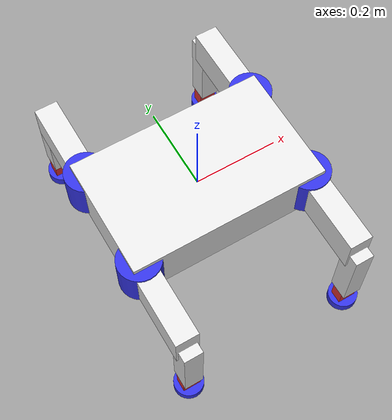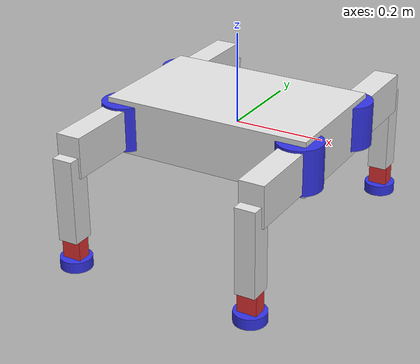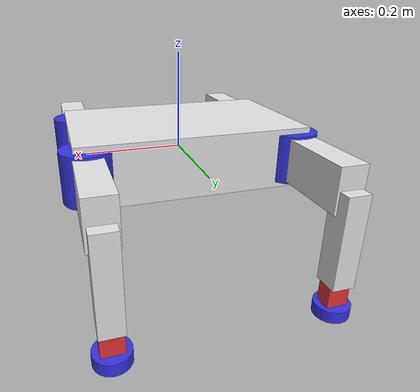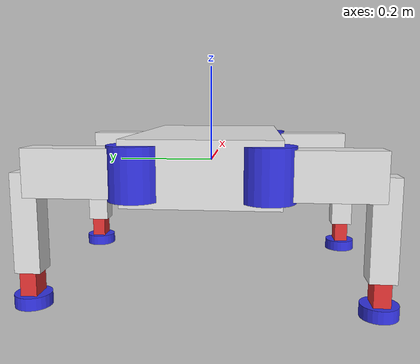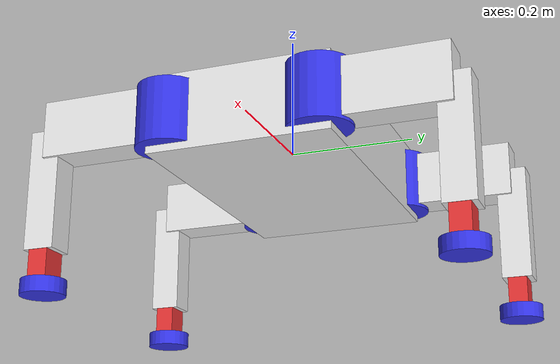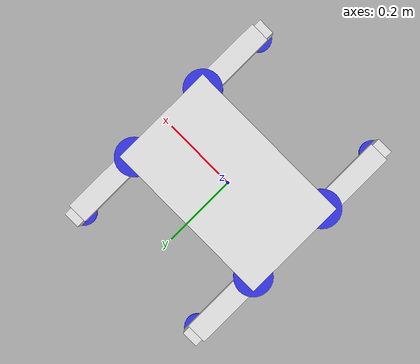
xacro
<robot name="rollerwalker" xmlns:xacro="http://ros.org/wiki/xacro">
    <xacro:include filename="$(find rollerwalker_sim)/xacro/include/leg_macro.xacro" />

    <!-- 本体の描画 -->
    <link name="base_link">
        <origin xyz="0 0 ${body_z}" rpy="0 0 0"/>
    </link>

    <joint name="base_to_body" type="fixed">
        <parent link="base_link"/>
        <child  link="body"/>
        <origin xyz="0 0 0" rpy="0 0 0"/>
    </joint>

    <!-- ボディ -->
    <link name = "body">
        <inertial>
            <origin xyz="0 0 0.0" rpy="0 0 0"/>
            <mass value ="${body_mass}"/>
            <inertia ixx="${I_body_xx}" ixy="0.0" ixz="0.0" iyy="${I_body_yy}" iyz="0.0" izz="${I_body_zz}"/>
        </inertial>
        <visual>
            <geometry>
                <box size = "${body_length} ${body_width} ${body_thickness}" />
            </geometry>
            <origin xyz="0 0 0.0" rpy="0 0 0"/>
            <material name = "white"/>
        </visual>

        <collision>
            <geometry>
                <box size = "${body_length} ${body_width} ${body_thickness}" />
            </geometry>
            <origin xyz="0 0 0" rpy="0 0 0"/>
        </collision>
    </link>
    <gazebo reference="body">
        <material>Gazebo/White</material>
    </gazebo>

    <!-- 脚のマクロの呼び出し -->
    <xacro:leg_macro leg_posi="lf"/>
    <xacro:leg_macro leg_posi="lr"/>
    <xacro:leg_macro leg_posi="rr"/>
    <xacro:leg_macro leg_posi="rf"/>

    <gazebo>
        <plugin name="gazebo_ros_control" filename="libgazebo_ros_control.so">
            <robotNamespace>/rollerwalker</robotNamespace>
            <robotSimType>gazebo_ros_control/DefaultRobotHWSim</robotSimType>
            <legacyModeNS>true</legacyModeNS>
        </plugin>

        <plugin name="ground_truth" filename="libgazebo_ros_p3d.so">
            <frameName>world</frameName>
            <bodyName>base_link</bodyName>
            <topicName>/true_position</topicName>
            <updateRate>${gazebo_position_publish_rate}</updateRate>
        </plugin>
    </gazebo>
</robot>

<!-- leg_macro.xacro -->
<robot xmlns:xacro="http://ros.org/wiki/xacro">
    <xacro:include filename="$(find rollerwalker_sim)/xacro/include/rollerwalker_macro.xacro" />
     <!-- 脚のマクロ -->
    <xacro:macro name="leg_macro" params="leg_posi">
        <!-- ジョイント1-->
        <joint name="joint_1_${leg_posi}" type="revolute">
            <parent link="body"/>
            <child  link="joint_1_link_${leg_posi}"/>
            <axis xyz="0 0 1"/>
            <!-- lf -->
            <xacro:if value="${leg_posi=='lf'}">
                <origin xyz="${body_length/2 - joint_1_radius/2} ${body_width/2 - joint_1_radius/2} 0.0" rpy="0 3.141519 -1.5708"/>
            </xacro:if>
            <!-- lr -->
            <xacro:if value="${leg_posi=='lr'}">
                <origin xyz="${-(body_length/2 - joint_1_radius/2)} ${body_width/2 - joint_1_radius/2} 0.0" rpy="0 3.141519 -1.5708"/>
            </xacro:if>
            <!-- rr -->
            <xacro:if value="${leg_posi=='rr'}">
                <origin xyz="${-(body_length/2 - joint_1_radius/2)} ${-(body_width/2 - joint_1_radius/2)} 0.0" rpy="0 0 -1.5708"/>
            </xacro:if>
            <!-- rf -->
            <xacro:if value="${leg_posi=='rf'}">
                <origin xyz="${body_length/2 - joint_1_radius/2} ${-(body_width/2 - joint_1_radius/2)} 0.0" rpy="0 0 -1.5708"/>
            </xacro:if>
            <limit lower="-1.5" upper="1.5" effort="${effort_limit}" velocity="100"/>
            <dynamics damping="${joint_1_damping}"/>
        </joint>

        <link name = "joint_1_link_${leg_posi}">
            <inertial>
                <mass value="${joint_1_mass}"/>
                <origin xyz="0 0 0" rpy="0 0 0"/>
                <inertia ixx="${I_joint_1_xx}" ixy="0.0" ixz="0.0" iyy="${I_joint_1_yy}" iyz="0.0" izz="${I_joint_1_zz}"/>
            </inertial>
            <visual>
                <geometry>
                    <cylinder radius="${joint_1_radius}" length="${joint_1_thickness}"/>
                </geometry>
                <origin xyz="0 0 0" rpy="0 0 0"/>
                <material name = "blue"/>
            </visual>
            <collision>
                <origin xyz="0 0 0" rpy="0 0 0"/>
                <geometry>
                    <cylinder radius="${joint_1_radius}" length="${joint_1_thickness}"/>
                </geometry>
            </collision>
        </link>
        <gazebo reference="joint_1_link_${leg_posi}">
            <material>Gazebo/Blue</material>
        </gazebo>

        <!-- ジョイント２の設定 -->
        <joint name="joint_2_${leg_posi}" type="revolute">
            <axis xyz="0 -1 0"/>
            <parent link="joint_1_link_${leg_posi}"/>
            <child  link="link_2_${leg_posi}"/>
            <xacro:if value="${leg_posi=='lf'}">
                <origin rpy="3.141519 0 0" xyz="0 0 0"/>
            </xacro:if>
            <xacro:if value="${leg_posi=='lr'}">
                <origin rpy="3.141519 0 0" xyz="0 0 0"/>
            </xacro:if>
            <xacro:if value="${leg_posi=='rr'}">
                <origin rpy="0 0 0" xyz="0 0 0"/>
            </xacro:if>
            <xacro:if value="${leg_posi=='rf'}">
                <origin rpy="0 0 0" xyz="0 0 0"/>
            </xacro:if>
            <dynamics damping="${joint_1_to_joint_2_damping}"/>
            <limit lower="-1.5" upper="1.5" effort="${effort_limit}" velocity="100"/>
        </joint>

        <!-- リンク2の描画 -->
        <link name = "link_2_${leg_posi}">
            <inertial>
                <mass value="${link_2_mass}"/>
                <origin xyz="${link_2_x/2} 0 0.0" rpy="0 0 0"/>
                <inertia ixx="${I_link_2_xx}" ixy="0.0" ixz="0.0" iyy="${I_link_2_yy}" iyz="0.0" izz="${I_link_2_zz}"/>
            </inertial>
            <visual>
                <geometry>
                    <box size = "${link_2_x} ${link_2_y} ${link_2_z}" />
                </geometry>
                <origin xyz="${link_2_x/2} 0 0.0" rpy="0 0 0"/>
                <material name = "white"/>
            </visual>
            <collision>
                <origin xyz="${link_2_x/2} 0 0.0" rpy="0 0 0"/>
                <geometry>
                    <box size = "${link_2_x} ${link_2_y} ${link_2_z}" />
                </geometry>
            </collision>
        </link>
        <gazebo reference="link_2_${leg_posi}">
            <material>Gazebo/White</material>
        </gazebo>

        <!-- ジョイント3の設定 -->
        <joint name="joint_3_${leg_posi}" type="revolute">
            <axis xyz="0 -1 0"/>
            <parent link="link_2_${leg_posi}"/>
            <child  link="link_3_${leg_posi}"/>
            <origin rpy="0 1.5708 0" xyz="${link_2_x} 0 0"/>
            <dynamics damping="${link_2_to_joint_3_damping}"/>
            <limit lower="-2.0" upper="1.5" effort="${effort_limit}" velocity="100"/>
        </joint>

        <link name = "link_3_${leg_posi}">
            <inertial>
                <mass value="${link_3_mass}"/>
                <origin xyz="${link_3_x/2} 0 0.0" rpy="0 0 0"/>
                <inertia ixx="${I_link_3_xx}" ixy="0.0" ixz="0.0" iyy="${I_link_3_yy}" iyz="0.0" izz="${I_link_3_zz}"/>
            </inertial>
            <visual>
                <geometry>
                    <box size = "${link_3_x} ${link_3_y} ${link_3_z}" />
                </geometry>
                <origin xyz="${link_3_x/2} 0 0.0" rpy="0 0 0"/>
                <material name = "white"/>
            </visual>
            <collision>
                <origin xyz="${link_3_x/2} 0 0.0" rpy="0 0 0"/>
                <geometry>
                    <box size = "${link_3_x} ${link_3_y} ${link_3_z}" />
                </geometry>
            </collision>
        </link>
        <gazebo reference="link_3_${leg_posi}">
            <material>Gazebo/White</material>
        </gazebo>

        <!-- ジョイント4の設定 -->
        <joint name="joint_4_${leg_posi}" type="revolute">
            <axis xyz="0 -1 0"/>
            <parent link="link_3_${leg_posi}"/>
            <child  link="link_4_${leg_posi}"/>
            <origin rpy="0 0 0" xyz="${link_3_x} 0 0"/>
            <dynamics damping="${link_3_to_joint_4_damping}"/>
            <limit lower="-2.0" upper="2.0" effort="${effort_limit}" velocity="100"/>
        </joint>

        <link name = "link_4_${leg_posi}">
            <inertial>
                <mass value="${link_4_mass}"/>
                <origin xyz="${link_4_x/2} 0 0.0" rpy="0 0 0"/>
                <inertia ixx="${I_link_4_xx}" ixy="0.0" ixz="0.0" iyy="${I_link_4_yy}" iyz="0.0" izz="${I_link_4_zz}"/>
            </inertial>
            <visual>
                <geometry>
                    <box size = "${link_4_x} ${link_4_y} ${link_4_z}" />
                </geometry>
                <origin xyz="${link_4_x/2} 0 0.0" rpy="0 0 0"/>
                <material name = "red"/>
            </visual>
            <collision>
                <origin xyz="${link_4_x/2} 0 0.0" rpy="0 0 0"/>
                <geometry>
                    <box size = "${link_4_x} ${link_4_y} ${link_4_z}" />
                </geometry>
            </collision>
        </link>
        <gazebo reference="link_4_${leg_posi}">
            <material>Gazebo/Red</material>
        </gazebo>

        <!-- リンク4とホイールの設定 -->
        <joint name="link_4_${leg_posi}_to_wheel_${leg_posi}" type="continuous">
            <axis xyz="0 0 1"/>
            <parent link="link_4_${leg_posi}"/>
            <child  link="wheel_${leg_posi}"/>
            <origin rpy="0 1.57070 0" xyz="${link_4_x + wheel_thickness/2} 0 0"/>
            <dynamics damping="${link_4_to_wheel_damping}" />
        </joint>

        <!-- ホイールの描画 -->
        <link name = "wheel_${leg_posi}">
            <inertial>
                <mass value="${wheel_mass}"/>
                <origin xyz="0 0 0.0" rpy="0 0 0"/>
                <inertia ixx="${I_wheel_xx}" ixy="0.0" ixz="0.0" iyy="${I_wheel_yy}" iyz="0.0" izz="${I_wheel_zz}"/>
            </inertial>
            <visual>
                <geometry>
                    <cylinder radius="${wheel_radius}" length="${wheel_thickness}"/>
                </geometry>
                <origin xyz="0 0 0.0" rpy="0 0 0"/>
                <material name = "blue"/>
            </visual>
            <collision>
                <origin xyz="0 0 0.0" rpy="0 0 0"/>
                <geometry>
                    <cylinder radius="${wheel_radius}" length="${wheel_thickness}"/>
                </geometry>
            </collision>
        </link>
        <gazebo reference="wheel_${leg_posi}">
            <material>Gazebo/Blue</material>
            <mu1>${mu}</mu1>
            <mu2>${mu_2}</mu2>
            <fdir1>1 0 0</fdir1>
        </gazebo>

        <!-- トランスミッション -->
        <transmission name="joint_1_${leg_posi}_trans" >
            <type>transmission_interface/SimpleTransmission</type>
            <actuator name="$joint_1_${leg_posi}_motor">
              <mechanicalReduction>1</mechanicalReduction>
            </actuator>
            <joint name="joint_1_${leg_posi}">
                <hardwareInterface>hardware_interface/EffortJointInterface</hardwareInterface>
            </joint>
        </transmission>
        <!-- ジョイント2のトランスミッション -->
        <transmission name="joint_2_${leg_posi}_trans" >
            <type>transmission_interface/SimpleTransmission</type>
            <actuator name="$joint_2_${leg_posi}_motor">
                <mechanicalReduction>1</mechanicalReduction>
            </actuator>
            <joint name="joint_2_${leg_posi}">
                <hardwareInterface>hardware_interface/EffortJointInterface</hardwareInterface>
            </joint>
        </transmission>

        <!-- ジョイント3のトランスミッション -->
        <transmission name="joint_3_${leg_posi}_trans" >
            <type>transmission_interface/SimpleTransmission</type>
            <actuator name="$joint_3_${leg_posi}_motor">
                <mechanicalReduction>1</mechanicalReduction>
            </actuator>
            <joint name="joint_3_${leg_posi}">
                <hardwareInterface>hardware_interface/EffortJointInterface</hardwareInterface>
            </joint>
         </transmission>

        <!-- ジョイント4のトランスミッション -->
        <transmission name="joint_4_${leg_posi}_trans" >
            <type>transmission_interface/SimpleTransmission</type>
            <actuator name="$joint_4_${leg_posi}_motor">
                <mechanicalReduction>1</mechanicalReduction>
            </actuator>
            <joint name="joint_4_${leg_posi}">
                <hardwareInterface>hardware_interface/EffortJointInterface</hardwareInterface>
            </joint>
         </transmission>

        <!-- ホイールのトランスミッション  -->
        <transmission name="wheel_trans" >
            <type>transmission_interface/SimpleTransmission</type>
            <actuator name="$wheel_motor">
                <mechanicalReduction>1</mechanicalReduction>
            </actuator>
            <joint name="link_4_${leg_posi}_to_wheel_${leg_posi}">
                <hardwareInterface>hardware_interface/EffortJointInterface</hardwareInterface>
            </joint>
        </transmission>
    </xacro:macro>
</robot>

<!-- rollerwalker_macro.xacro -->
<robot xmlns:xacro="http://ros.org/wiki/xacro">
        <!-- 色の定義 -->
    <material name="red">
        <color rgba="0.9 0.2 0.2 1.0"/>
    </material>

    <material name="green">
        <color rgba="0.2 0.9 0.2 1.0"/>
    </material>

    <material name="blue">
        <color rgba="0.2 0.2 0.9 1.0"/>
    </material>

    <material name="yellow">
        <color rgba="0.9 0.9 0.2 1.0"/>
    </material>
    <material name="white">
        <color rgba="0.9 0.9 0.9 1.0"/>
    </material>

    <!-- 各パラメータ -->
    <!-- 各リンクの重量設定 -->
    <xacro:property name="total_mass" value="23.8" />
    <xacro:property name="body_mass" value="${total_mass/3}" />
    <xacro:property name="leg_mass" value="${total_mass*2/3}" />
    <xacro:property name="joint_1_mass" value="1.0" />
    <xacro:property name="joint_2_mass" value="1.0" />
    <xacro:property name="joint_3_mass" value="1.0" />
    <xacro:property name="joint_4_mass" value="1.0" />
    <xacro:property name="link_2_mass" value="${leg_mass/2}" />
    <xacro:property name="link_3_mass" value="${leg_mass/3}" />
    <xacro:property name="link_4_mass" value="${leg_mass/12}" />
    <xacro:property name="wheel_mass" value="${leg_mass/12}" />

    <!-- ボディ関連 -->
    <xacro:property name="body_z" value="0.2" /> <!-- ボディの高さ -->
    <xacro:property name="body_length" value="0.47" />
    <xacro:property name="body_width" value="0.29" />
    <xacro:property name="body_thickness" value="0.123" />

    <!-- ボディーのイナーシャ -->
    <xacro:property name="I_body_xx" value="${1/12*body_mass*(body_thickness*body_thickness + body_width*body_width)}" />
    <xacro:property name="I_body_yy" value="${1/12*body_mass*(body_length*body_length + body_thickness*body_thickness)}" />
    <xacro:property name="I_body_zz" value="${1/12*body_mass*(body_length*body_length + body_width*body_width)}" />

    <!-- 各リンクの長さ -->
    <xacro:property name="l2" value="0.2" />
    <xacro:property name="l3" value="0.243" />
    <xacro:property name="l4" value="0.031" />

    <!-- タイヤ関連 -->
    <xacro:property name="wheel_radius" value="0.035" />
    <xacro:property name="wheel_thickness" value="0.024" />
    <!-- タイヤのイナーシャ -->
    <xacro:property name="I_wheel_xx" value="${wheel_mass*(wheel_radius * wheel_radius/4 + wheel_thickness * wheel_thickness / 12)}" />
    <xacro:property name="I_wheel_yy" value="${wheel_mass*(wheel_radius * wheel_radius/4 + wheel_thickness * wheel_thickness / 12)}" />
    <xacro:property name="I_wheel_zz" value="${wheel_radius * wheel_radius * wheel_mass /2}" />                                             <!--1/2MR^2-->

    <!-- ジョイント1関連 -->
    <xacro:property name="joint_1_radius" value="0.05" />
    <xacro:property name="joint_1_thickness" value="0.1" />
    <!-- ジョイント1のイナーシャ -->
    <xacro:property name="I_joint_1_xx" value="${joint_1_mass*(joint_1_radius * joint_1_radius/4 + joint_1_thickness * joint_1_thickness / 12)}" />
    <xacro:property name="I_joint_1_yy" value="${joint_1_mass*(joint_1_radius * joint_1_radius/4 + joint_1_thickness * joint_1_thickness / 12)}" />
    <xacro:property name="I_joint_1_zz" value="${joint_1_mass* joint_1_radius * joint_1_radius/2}" />                                                  <!--1/2MR^2-->

    <!-- ジョイント2関連 -->
    <xacro:property name="joint_2_radius" value="0.05" />
    <xacro:property name="joint_2_thickness" value="0.060" />
    <!-- ジョイント2のイナーシャ -->
    <xacro:property name="I_joint_2_xx" value="${joint_2_mass*(joint_2_radius * joint_2_radius/4 + joint_2_thickness * joint_2_thickness / 12)}" />
    <xacro:property name="I_joint_2_yy" value="${joint_2_mass*(joint_2_radius * joint_2_radius/4 + joint_2_thickness * joint_2_thickness / 12)}" />
    <xacro:property name="I_joint_2_zz" value="${joint_2_mass* joint_2_radius * joint_2_radius/2}" />                                                  <!--1/2MR^2-->

    <!-- ジョイント3関連 -->
    <xacro:property name="joint_3_radius" value="0.04" />
    <xacro:property name="joint_3_thickness" value="0.05" />
    <!-- ジョイント3のイナーシャ -->
    <xacro:property name="I_joint_3_xx" value="${joint_3_mass*(joint_3_radius * joint_3_radius/4 + joint_3_thickness * joint_3_thickness / 12)}" />
    <xacro:property name="I_joint_3_yy" value="${joint_3_mass*(joint_3_radius * joint_3_radius/4 + joint_3_thickness * joint_3_thickness / 12)}" />
    <xacro:property name="I_joint_3_zz" value="${joint_3_mass* joint_3_radius * joint_3_radius/2}" />                                                  <!--1/2MR^2-->

    <!-- ジョイント4関連 -->
    <xacro:property name="joint_4_radius" value="0.02" />
    <xacro:property name="joint_4_thickness" value="0.044" />
    <!-- ジョイント4のイナーシャ -->
    <xacro:property name="I_joint_4_xx" value="${joint_4_mass*(joint_4_radius * joint_4_radius/4 + joint_4_thickness * joint_4_thickness / 12)}" />
    <xacro:property name="I_joint_4_yy" value="${joint_4_mass*(joint_4_radius * joint_4_radius/4 + joint_4_thickness * joint_4_thickness / 12)}" />
    <xacro:property name="I_joint_4_zz" value="${joint_4_mass* joint_4_radius * joint_4_radius/2}" />                                                  <!--1/2MR^2-->

    <!-- 各足の長さはlink_n_xの値を変えれば良い -->
    <!-- リンク2関連 -->
    <xacro:property name="link_2_x" value="0.2" />
    <xacro:property name="link_2_y" value="0.055" />
    <xacro:property name="link_2_z" value="0.09" />
    <!-- リンク2のイナーシャ -->
    <xacro:property name="I_link_2_xx" value="${1/12*link_2_mass*(link_2_y*link_2_y + link_2_z*link_2_z)}" />
    <xacro:property name="I_link_2_yy" value="${1/12*link_2_mass*(link_2_x*link_2_x + link_2_z*link_2_z)}" />
    <xacro:property name="I_link_2_zz" value="${1/12*link_2_mass*(link_2_x*link_2_x + link_2_y*link_2_y)}" />

    <!-- リンク3関連 -->
    <xacro:property name="link_3_x" value="0.188" />
    <xacro:property name="link_3_y" value="0.045" />
    <xacro:property name="link_3_z" value="0.049" />
    <!-- リンク3のイナーシャ -->
    <xacro:property name="I_link_3_xx" value="${1/12*link_3_mass*(link_3_y*link_3_y + link_3_z*link_3_z)}" />
    <xacro:property name="I_link_3_yy" value="${1/12*link_3_mass*(link_3_x*link_3_x + link_3_z*link_3_z)}" />
    <xacro:property name="I_link_3_zz" value="${1/12*link_3_mass*(link_3_x*link_3_x + link_3_y*link_3_y)}" />

    <!-- リンク4関連 -->
    <xacro:property name="link_4_x" value="0.044" />
    <xacro:property name="link_4_y" value="0.043" />
    <xacro:property name="link_4_z" value="0.031" />
    <!-- リンク4のイナーシャ -->
    <xacro:property name="I_link_4_xx" value="${1/12*link_4_mass*(link_4_y*link_4_y + link_4_z*link_4_z)}" />
    <xacro:property name="I_link_4_yy" value="${1/12*link_4_mass*(link_4_x*link_4_x + link_4_z*link_4_z)}" />
    <xacro:property name="I_link_4_zz" value="${1/12*link_4_mass*(link_4_x*link_4_x + link_4_y*link_4_y)}" />

    <!-- ジョイントのダンピング係数 -->
    <xacro:property name="joint_1_damping"    value="0.1" />   <!-- ボディーからジョイント1のダンピング係数 -->
    <xacro:property name="joint_1_to_joint_2_damping" value="0.1" />   <!-- ジョイント1からジョイント2のダンピング係数 -->
    <xacro:property name="joint_2_to_link_2_damping"  value="0.1" />   <!-- ジョイント2からリンク2のダンピング係数 -->
    <xacro:property name="link_2_to_joint_3_damping"  value="0.1" />   <!-- リンク2からジョイント3のダンピング係数 -->
    <xacro:property name="joint_3_to_link_3_damping"  value="0.1" />   <!-- ジョイント3からリンク3のダンピング係数 -->
    <xacro:property name="link_3_to_joint_4_damping"  value="0.1" />   <!-- リンク3からジョイント4のダンピング係数 -->
    <xacro:property name="joint_4_to_link_4_damping"  value="0.1" />   <!-- ジョイント4からリンク4のダンピング係数 -->
    <xacro:property name="link_4_to_wheel_damping"    value="0.005" />   <!-- リンク4からホイールのダンピング係数 -->

        <!-- 摩擦力 -->
    <xacro:property name="mu" value="0.417" />
    <xacro:property name="mu_2" value="0.417" />

    <!-- めり込み係数 -->
    <xacro:property name="kp" value="100000" />

    <!-- effort_limit -->
    <xacro:property name="effort_limit" value="100000" />

    <!-- gazebo上の位置のパブリッシュレート -->
    <xacro:property name="gazebo_position_publish_rate" value="50" />

</robot>
